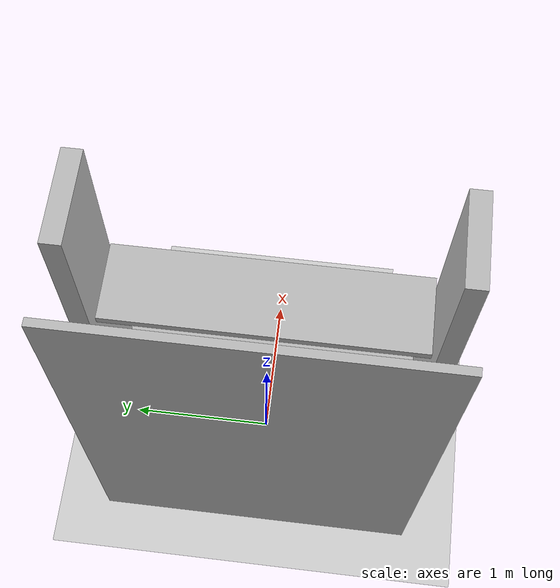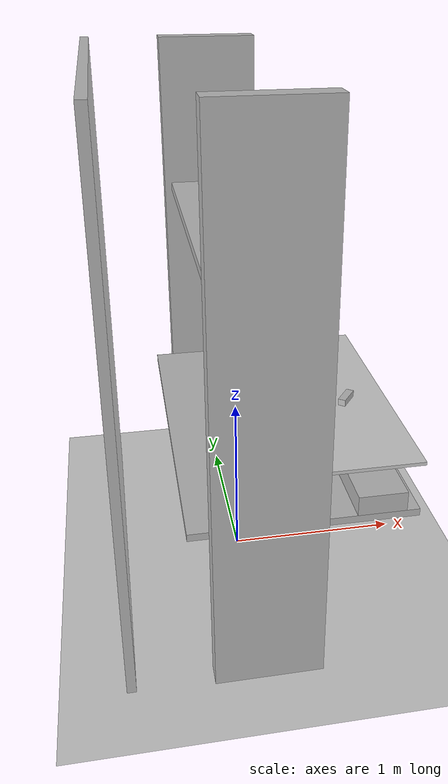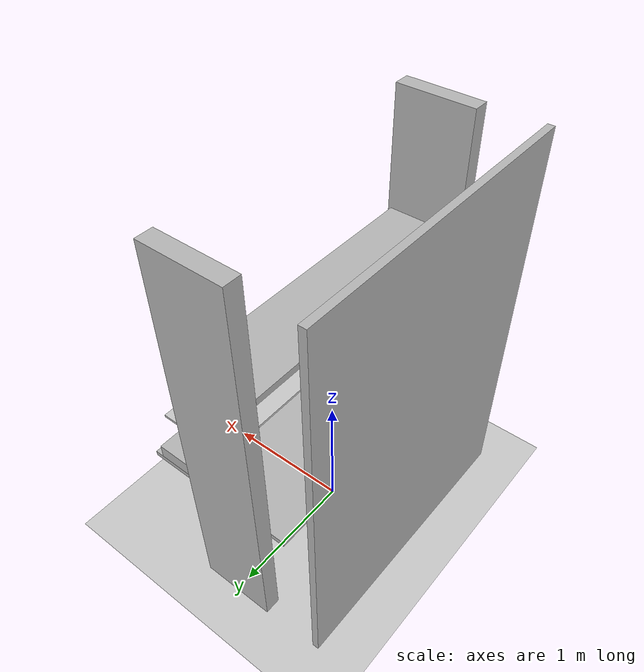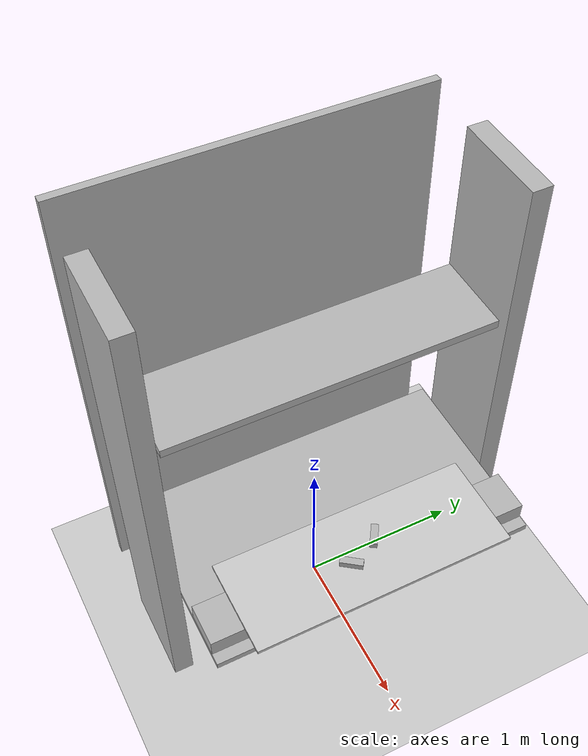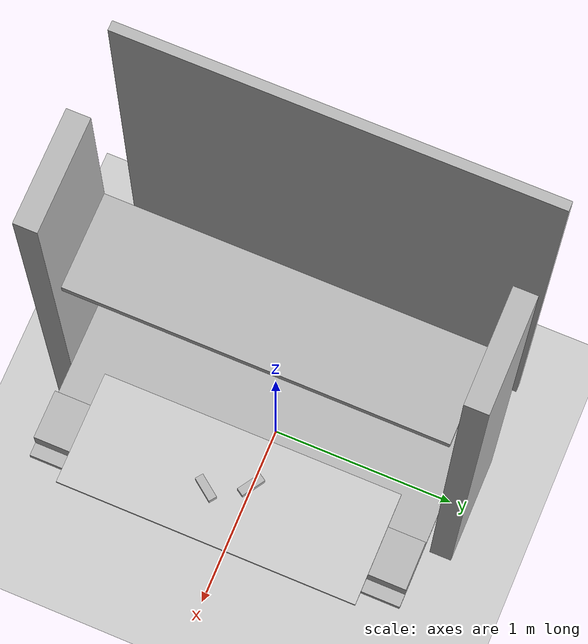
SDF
<sdf version='1.9'>
  <world name='empty'>
    <physics name='1ms' type='ignored'>
      <max_step_size>0.001</max_step_size>
      <real_time_factor>1</real_time_factor>
      <real_time_update_rate>1000</real_time_update_rate>
    </physics>
    <plugin name='gz::sim::systems::Physics' filename='ignition-gazebo-physics-system'/>
    <plugin name='gz::sim::systems::UserCommands' filename='ignition-gazebo-user-commands-system'/>
    <plugin name='gz::sim::systems::SceneBroadcaster' filename='ignition-gazebo-scene-broadcaster-system'/>
    <plugin name='gz::sim::systems::Contact' filename='ignition-gazebo-contact-system'/>
    <gravity>0 0 -9.8</gravity>
    <magnetic_field>6e-06 2.3e-05 -4.2e-05</magnetic_field>
    <atmosphere type='adiabatic'/>
    <scene>
      <ambient>0.4 0.4 0.4 1</ambient>
      <background>0.7 0.7 0.7 1</background>
      <shadows>true</shadows>
    </scene>

    <model name='ground_plane'>
      <static>true</static>
      <link name='link'>
        <collision name='collision'>
          <geometry>
            <plane>
              <normal>0 0 1</normal>
              <size>100 100</size>
            </plane>
          </geometry>
          <surface>
            <friction>
              <ode/>
            </friction>
            <bounce/>
            <contact/>
          </surface>
        </collision>
        <visual name='visual'>
          <geometry>
            <plane>
              <normal>0 0 1</normal>
              <size>100 100</size>
            </plane>
          </geometry>
          <material>
            <ambient>0.8 0.8 0.8 1</ambient>
            <diffuse>0.8 0.8 0.8 1</diffuse>
            <specular>0.8 0.8 0.8 1</specular>
          </material>
        </visual>
        <pose>0 0 0 0 -0 0</pose>
        <inertial>
          <pose>0 0 0 0 -0 0</pose>
          <mass>1</mass>
          <inertia>
            <ixx>1</ixx>
            <ixy>0</ixy>
            <ixz>0</ixz>
            <iyy>1</iyy>
            <iyz>0</iyz>
            <izz>1</izz>
          </inertia>
        </inertial>
        <enable_wind>false</enable_wind>
      </link>
      <pose>0 0 0 0 -0 0</pose>
      <self_collide>false</self_collide>
    </model>

    <model name="support">
      <static>true</static>
      <link name="box">
        <collision name="collision">
          <max_contacts>10</max_contacts>
          <pose frame="">0 0 0 0 0 0</pose>
          <geometry>
            <box>
              <size>0.5 1.95 0.05</size>
            </box>
          </geometry>
        </collision>
        <visual name="visual">
          <pose frame="">0 0 0 0 0 0</pose>
          <geometry>
            <box>
              <size>0.5 1.95 0.05</size>
            </box>
          </geometry>
          <transparency>0.0</transparency>
          <cast_shadows>1</cast_shadows>
        </visual>
      </link>
      <pose frame="">0 0 2.095 0 0 0</pose>
      <allow_auto_disable>0</allow_auto_disable>
      <static>0</static>
    </model>

    <model name="left_column">
      <static>true</static>
      <link name="box">
        <collision name="collision">
          <max_contacts>10</max_contacts>
          <pose frame="">0 0 0 0 0 0</pose>
          <geometry>
            <box>
              <size>0.58 0.12 3</size>
            </box>
          </geometry>
        </collision>
        <visual name="visual">
          <pose frame="">0 0 0 0 0 0</pose>
          <geometry>
            <box>
              <size>0.58 0.12 3</size>
            </box>
          </geometry>
          <transparency>0.0</transparency>
          <cast_shadows>1</cast_shadows>
        </visual>
      </link>
      <pose frame="">0 -1.06 1.5 0 0 0</pose>
      <allow_auto_disable>0</allow_auto_disable>
      <static>0</static>
    </model>

    <model name="right_column">
      <static>true</static>
      <link name="box">
        <collision name="collision">
          <max_contacts>10</max_contacts>
          <pose frame="">0 0 0 0 0 0</pose>
          <geometry>
            <box>
              <size>0.58 0.12 3</size>
            </box>
          </geometry>
        </collision>
        <visual name="visual">
          <pose frame="">0 0 0 0 0 0</pose>
          <geometry>
            <box>
              <size>0.58 0.12 3</size>
            </box>
          </geometry>
          <transparency>0.0</transparency>
          <cast_shadows>1</cast_shadows>
        </visual>
      </link>
      <pose frame="">0 1.06 1.5 0 0 0</pose>
      <allow_auto_disable>0</allow_auto_disable>
      <static>0</static>
    </model>

    <model name="table">
      <static>true</static>
      <link name="box">
        <collision name="collision">
          <max_contacts>10</max_contacts>
          <pose frame="">0 0 0 0 0 0</pose>
          <geometry>
            <box>
              <size>1.2 2 0.04</size>
            </box>
          </geometry>
        </collision>
        <visual name="visual">
          <pose frame="">0 0 0 0 0 0</pose>
          <geometry>
            <box>
              <size>1.2 2 0.04</size>
            </box>
          </geometry>
          <transparency>0.0</transparency>
          <cast_shadows>1</cast_shadows>
        </visual>
      </link>
      <pose frame="">0.2 0 0.870 0 0 0</pose>
      <allow_auto_disable>0</allow_auto_disable>
      <static>0</static>
    </model>

    <model name="wall">
      <static>true</static>
      <link name="box">
        <collision name="collision">
          <max_contacts>10</max_contacts>
          <pose frame="">0 0 0 0 0 0</pose>
          <geometry>
            <box>
              <size>0.05 2.2 3</size>
            </box>
          </geometry>
        </collision>
        <visual name="visual">
          <pose frame="">0 0 0 0 0 0</pose>
          <geometry>
            <box>
              <size>0.05 2.2 3</size>
            </box>
          </geometry>
          <transparency>0.0</transparency>
          <cast_shadows>1</cast_shadows>
        </visual>
      </link>
      <pose frame="">-0.7250 0 1.5 0 0 0</pose>
      <allow_auto_disable>0</allow_auto_disable>
      <static>0</static>
    </model>

    <model name="tabla">
      <static>true</static>
      <link name="box">
        <collision name="collision">
          <max_contacts>10</max_contacts>
          <pose frame="">0 0 0 0 0 0</pose>
          <geometry>
            <box>
              <size>0.6 1.6 0.020</size>
            </box>
          </geometry>
        </collision>
        <visual name="visual">
          <pose frame="">0 0 0 0 0 0</pose>
          <geometry>
            <box>
              <size>0.6 1.6 0.020</size>
            </box>
          </geometry>
          <material>
            <ambient>0.5 0.5 0.5 1</ambient> <!-- Gray color for little reflection -->
            <diffuse>0.8 0.8 0.8 1</diffuse> <!-- Light gray to simulate a bit of shininess -->
            <specular>0.01 0.01 0.01 1</specular> <!-- Low specular for minimal reflection -->
          </material>
          <transparency>0.0</transparency>
          <cast_shadows>1</cast_shadows>
        </visual>
      </link>
      <pose frame="">0.600 0 1.02 0 0 0</pose>
      <allow_auto_disable>0</allow_auto_disable>
      <static>0</static>
    </model>

    <model name="guide">
      <static>true</static>
      <link name="box">
        <collision name="collision">
          <max_contacts>10</max_contacts>
          <pose frame="">0 0 0 0 0 0</pose>
          <geometry>
            <box>
              <size>0.260 2 0.110</size>
            </box>
          </geometry>
        </collision>
        <visual name="visual">
          <pose frame="">0 0 0 0 0 0</pose>
          <geometry>
            <box>
              <size>0.260 2 0.110</size>
            </box>
          </geometry>
          <transparency>0.0</transparency>
          <cast_shadows>1</cast_shadows>
        </visual>
      </link>
      <pose frame="">0.600 0 0.945 0 0 0</pose>
      <allow_auto_disable>0</allow_auto_disable>
      <static>0</static>
    </model>

    <model name="part1">
      <pose>0.65 -0.1 1.055 0 0 2.5</pose>
     <link name="link">
      <inertial>
        <pose>0 0 0 0 0 0</pose>
        <mass>0.03</mass>
        <inertia>
          <ixx>88177e-09</ixx>
          <ixy>0</ixy>
          <ixz>0</ixz>
          <iyy>55986e-09</iyy>
          <iyz>0</iyz>
          <izz>84612e-09</izz>
        </inertia>
      </inertial>
        <visual name="visual">
          <geometry>
            <mesh><uri>/home/user/ws/urcell_ws/src/urcell_sim/worlds/e_box2.dae</uri></mesh>
          </geometry>
        </visual>
        <collision name='collision'>
       <geometry>
            <mesh><uri>/home/user/ws/urcell_ws/src/urcell_sim/worlds/e_box2.stl</uri></mesh>
        </geometry>
      </collision>
      </link>
    </model>

    <model name="part2">
      <pose>0.55 0.1 1.055 0 0 1</pose>
     <link name="link">
      <inertial>
        <pose>0 0 0 0 0 0</pose>
        <mass>0.03</mass>
        <inertia>
          <ixx>88177e-09</ixx>
          <ixy>0</ixy>
          <ixz>0</ixz>
          <iyy>55986e-09</iyy>
          <iyz>0</iyz>
          <izz>84612e-09</izz>
        </inertia>
      </inertial>
        <visual name="visual">
          <geometry>
            <mesh><uri>/home/user/ws/urcell_ws/src/urcell_sim/worlds/e_box2.dae</uri></mesh>
          </geometry>
        </visual>
        <collision name='collision'>
       <geometry>
            <mesh><uri>/home/user/ws/urcell_ws/src/urcell_sim/worlds/e_box2.stl</uri></mesh>
        </geometry>
      </collision>
      </link>
    </model>

    <light name='sun' type='directional'>
      <pose>0 0 10 0 -0 0</pose>
      <cast_shadows>true</cast_shadows>
      <intensity>1</intensity>
      <direction>-0.5 0.1 -0.9</direction>
      <diffuse>0.8 0.8 0.8 1</diffuse>
      <specular>0.2 0.2 0.2 1</specular>
      <attenuation>
        <range>1000</range>
        <linear>0.01</linear>
        <constant>0.90000000000000002</constant>
        <quadratic>0.001</quadratic>
      </attenuation>
      <spot>
        <inner_angle>0</inner_angle>
        <outer_angle>0</outer_angle>
        <falloff>0</falloff>
      </spot>
    </light>
  </world>
</sdf>
